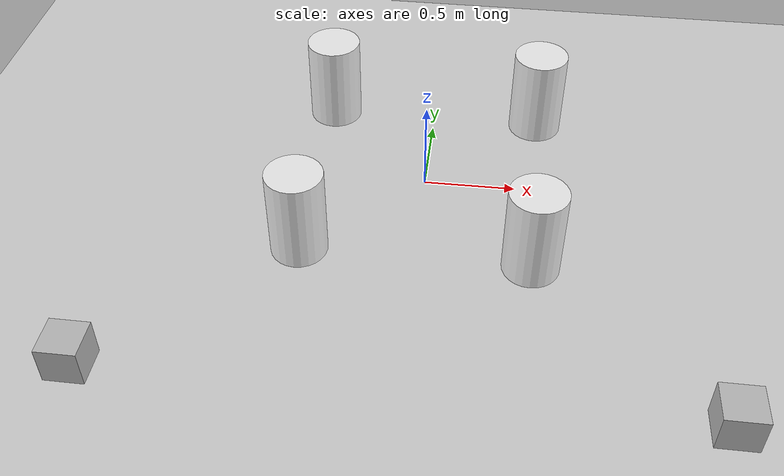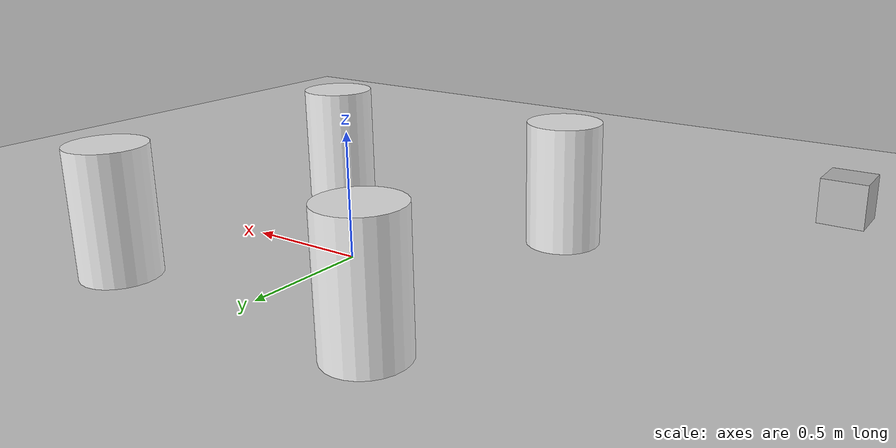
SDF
<sdf version="1.4">
 <world name="default">
  <include><uri>model://sun</uri></include>
  <include><uri>model://ground_plane</uri></include>
  <physics type="ode">
   <real_time_update_rate>1000.0</real_time_update_rate>
   <max_step_size>0.001</max_step_size>
   <real_time_factor>1</real_time_factor>
   <ode>
    <solver>
     <type>quick</type>
     <iters>150</iters>
     <precon_iters>0</precon_iters>
     <sor>1.400000</sor>
     <use_dynamic_moi_rescaling>1</use_dynamic_moi_rescaling>
    </solver>
    <constraints>
     <cfm>0.00001</cfm>
     <erp>0.2</erp>
     <contact_max_correcting_vel>2000.000000</contact_max_correcting_vel>
     <contact_surface_layer>0.01000</contact_surface_layer>
    </constraints>
   </ode>
  </physics>
  <model name="box_1">
   <static>1</static>
   <pose>1.5 -1.5 0.1 0 0 0</pose>
   <link name="box_link">
    <collision name="obstacle"><geometry><box><size>.2 .2 .2</size></box></geometry></collision>
    <visual name="visual"><geometry><box><size>.2 .2 .2</size></box></geometry></visual>
   </link>
  </model>
  <model name="box_2">
   <static>1</static>
   <pose>-1.5 -1.5 0.1 0 0 0</pose>
   <link name="box_link">
    <collision name="obstacle"><geometry><box><size>.2 .2 .2</size></box></geometry></collision>
    <visual name="visual"><geometry><box><size>.2 .2 .2</size></box></geometry></visual>
   </link>
  </model>
  <model name="obstacle">
   <link name="obstacle">
    <collision name="obstacle_1">
     <pose>-0.6 -0.6 0.25 0 0 0</pose>
     <geometry><cylinder><radius>0.15</radius><length>0.5</length></cylinder></geometry>
    </collision>
    <visual name="obstacle_1">
     <pose>-0.6 -0.6 0.25 0 0 0</pose>
     <geometry><cylinder><radius>0.15</radius><length>0.5</length></cylinder></geometry>
     <material>
      <script><uri>file://media/materials/scripts/gazebo.material</uri><name>Gazebo/White</name></script>
     </material>
    </visual>
    <collision name="obstacle_2">
     <pose>-0.6 0.6 0.25 0 0 0</pose>
     <geometry><cylinder><radius>0.15</radius><length>0.5</length></cylinder></geometry>
    </collision>
    <visual name="obstacle_2">
     <pose>-0.6 0.6 0.25 0 0 0</pose>
     <geometry><cylinder><radius>0.15</radius><length>0.5</length></cylinder></geometry>
     <material>
      <script><uri>file://media/materials/scripts/gazebo.material</uri><name>Gazebo/White</name></script>
     </material>
    </visual>
    <collision name="obstacle_3">
     <pose>0.6 -0.6 0.25 0 0 0</pose>
     <geometry><cylinder><radius>0.15</radius><length>0.5</length></cylinder></geometry>
    </collision>
    <visual name="obstacle_3">
     <pose>0.6 -0.6 0.25 0 0 0</pose>
     <geometry><cylinder><radius>0.15</radius><length>0.5</length></cylinder></geometry>
     <material>
      <script><uri>file://media/materials/scripts/gazebo.material</uri><name>Gazebo/White</name></script>
     </material>
    </visual>
    <collision name="obstacle_4">
     <pose>0.6 0.6 0.25 0 0 0</pose>
     <geometry><cylinder><radius>0.15</radius><length>0.5</length></cylinder></geometry>
    </collision>
    <visual name="obstacle_4">
     <pose>0.6 0.6 0.25 0 0 0</pose>
     <geometry><cylinder><radius>0.15</radius><length>0.5</length></cylinder></geometry>
     <material>
      <script><uri>file://media/materials/scripts/gazebo.material</uri><name>Gazebo/White</name></script>
     </material>
    </visual>
   </link>
   <static>1</static>
  </model>
  <scene><ambient>0.4 0.4 0.4 1</ambient><background>0.7 0.7 0.7 1</background><shadows>true</shadows></scene>
 </world>
</sdf>
